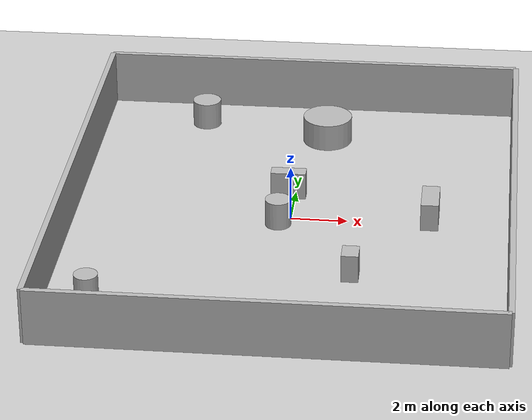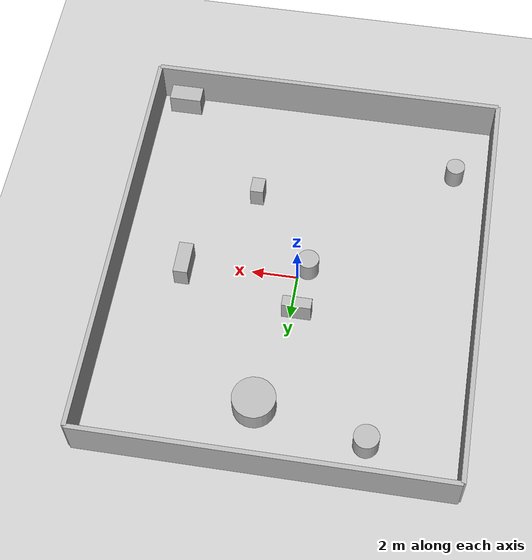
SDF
<?xml version="1.0"?>
<sdf version="1.6">
  <world name="env_74">

    <include><uri>model://ground_plane</uri></include>
    <include><uri>model://sun</uri></include>

    <!-- WALLS -->
    <model name="wall_north"><static>true</static><pose>0 9.070759240997956 1 0 0 0</pose>
      <link name="link"><collision name="collision">
        <geometry><box><size>15.570487873376457 0.2 2</size></box></geometry>
      </collision><visual name="visual">
        <geometry><box><size>15.570487873376457 0.2 2</size></box></geometry>
      </visual></link>
    </model>

    <model name="wall_south"><static>true</static><pose>0 -9.070759240997956 1 0 0 0</pose>
      <link name="link"><collision name="collision">
        <geometry><box><size>15.570487873376457 0.2 2</size></box></geometry>
      </collision><visual name="visual">
        <geometry><box><size>15.570487873376457 0.2 2</size></box></geometry>
      </visual></link>
    </model>

    <model name="wall_east"><static>true</static><pose>7.785243936688229 0 1 0 0 1.57</pose>
      <link name="link"><collision name="collision">
        <geometry><box><size>18.141518481995913 0.2 2</size></box></geometry>
      </collision><visual name="visual">
        <geometry><box><size>18.141518481995913 0.2 2</size></box></geometry>
      </visual></link>
    </model>

    <model name="wall_west"><static>true</static><pose>-7.785243936688229 0 1 0 0 1.57</pose>
      <link name="link"><collision name="collision">
        <geometry><box><size>18.141518481995913 0.2 2</size></box></geometry>
      </collision><visual name="visual">
        <geometry><box><size>18.141518481995913 0.2 2</size></box></geometry>
      </visual></link>
    </model>

    <!-- SENSOR -->

    <model name="lidar_sensor">
      <static>true</static>
      <pose>2.321864901398584 2.366907311224759 0.4 0 0 0</pose>
      <link name="link">
        <sensor name="lidar" type="ray">
          <pose>0 0 0 0 0 0</pose>
          <visualize>true</visualize>
          <always_on>true</always_on>
          <update_rate>10</update_rate>
          <ray>
            <scan><horizontal>
              <samples>240</samples>
              <resolution>1</resolution>
              <min_angle>-3.14159</min_angle>
              <max_angle>3.14159</max_angle>
            </horizontal></scan>
            <range><min>0.15</min><max>20.0</max><resolution>0.01</resolution></range>
          </ray>
          <plugin name="lidar_plugin" filename="liblidar_plugin.so"/>
        </sensor>
      </link>
    </model>

    <!-- OBSTACLES -->

    <model name="obstacle_0">
      <static>true</static>
      <pose>2.3716073584024997 -3.8884569166168594 0.5 0 0 0</pose>
      <link name="link">
        <collision name="collision">
          <geometry><box><size>0.59 0.75 1.0</size></box></geometry>
        </collision>
        <visual name="visual">
          <geometry><box><size>0.59 0.75 1.0</size></box></geometry>
        </visual>
      </link>
    </model>

    <model name="obstacle_1">
      <static>true</static>
      <pose>0.794653389646518 6.317466710240197 0.5 0 0 0</pose>
      <link name="link">
        <collision name="collision">
          <geometry><cylinder><radius>0.91</radius><length>1.0</length></cylinder></geometry>
        </collision>
        <visual name="visual">
          <geometry><cylinder><radius>0.91</radius><length>1.0</length></cylinder></geometry>
        </visual>
      </link>
    </model>

    <model name="obstacle_2">
      <static>true</static>
      <pose>-6.23405157000575 -6.229799911870708 0.5 0 0 0</pose>
      <link name="link">
        <collision name="collision">
          <geometry><cylinder><radius>0.41</radius><length>1.0</length></cylinder></geometry>
        </collision>
        <visual name="visual">
          <geometry><cylinder><radius>0.41</radius><length>1.0</length></cylinder></geometry>
        </visual>
      </link>
    </model>

    <model name="obstacle_3">
      <static>true</static>
      <pose>-3.905647267345187 7.30155398339976 0.5 0 0 0</pose>
      <link name="link">
        <collision name="collision">
          <geometry><cylinder><radius>0.53</radius><length>1.0</length></cylinder></geometry>
        </collision>
        <visual name="visual">
          <geometry><cylinder><radius>0.53</radius><length>1.0</length></cylinder></geometry>
        </visual>
      </link>
    </model>

    <model name="obstacle_4">
      <static>true</static>
      <pose>6.519002905981793 -8.487517399185036 0.5 0 0 0</pose>
      <link name="link">
        <collision name="collision">
          <geometry><box><size>1.44 0.78 1.0</size></box></geometry>
        </collision>
        <visual name="visual">
          <geometry><box><size>1.44 0.78 1.0</size></box></geometry>
        </visual>
      </link>
    </model>

    <model name="obstacle_5">
      <static>true</static>
      <pose>-0.24718457776270686 1.7284223803806942 0.5 0 0 0</pose>
      <link name="link">
        <collision name="collision">
          <geometry><box><size>1.26 0.49 1.0</size></box></geometry>
        </collision>
        <visual name="visual">
          <geometry><box><size>1.26 0.49 1.0</size></box></geometry>
        </visual>
      </link>
    </model>

    <model name="obstacle_6">
      <static>true</static>
      <pose>4.9012414475600306 0.3013190455048971 0.5 0 0 0</pose>
      <link name="link">
        <collision name="collision">
          <geometry><box><size>0.63 1.47 1.0</size></box></geometry>
        </collision>
        <visual name="visual">
          <geometry><box><size>0.63 1.47 1.0</size></box></geometry>
        </visual>
      </link>
    </model>

    <model name="obstacle_7">
      <static>true</static>
      <pose>-0.4174664412892808 -0.4341101833940062 0.5 0 0 0</pose>
      <link name="link">
        <collision name="collision">
          <geometry><cylinder><radius>0.46</radius><length>1.0</length></cylinder></geometry>
        </collision>
        <visual name="visual">
          <geometry><cylinder><radius>0.46</radius><length>1.0</length></cylinder></geometry>
        </visual>
      </link>
    </model>

  </world>
</sdf>
